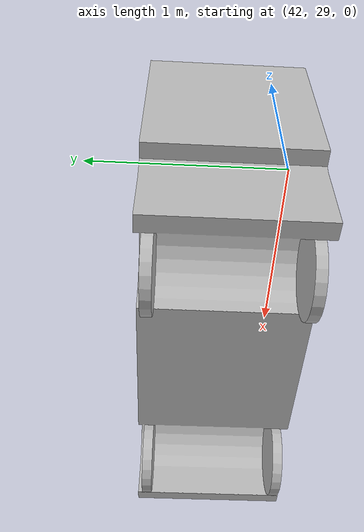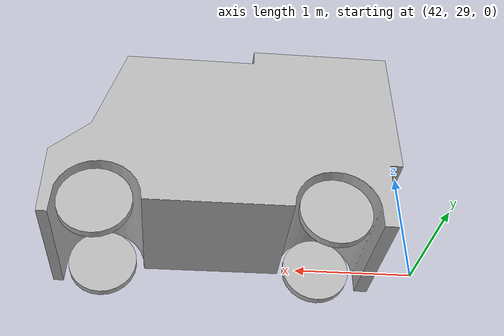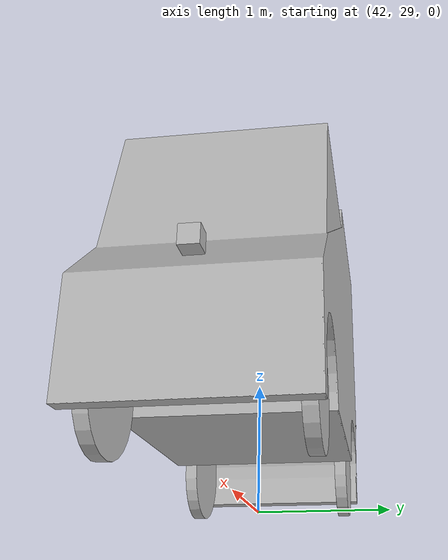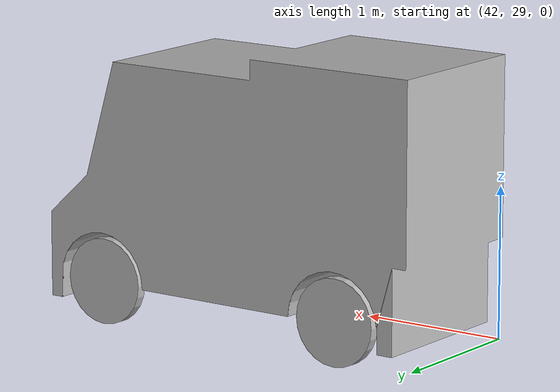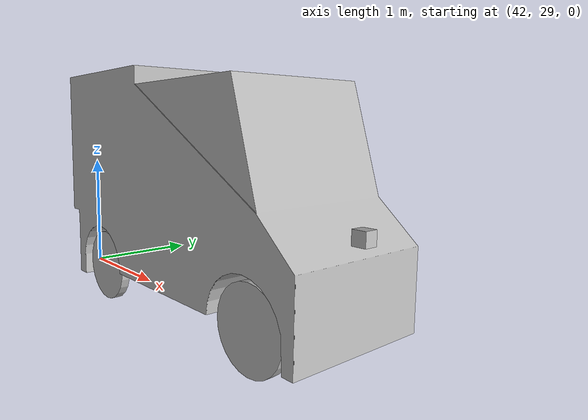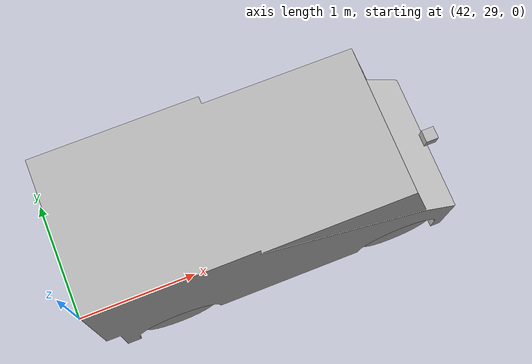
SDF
<?xml version="1.0"?>
<sdf version="1.7">
    <model name="robotaksi_ros2">
      <link name='chassis'>
        <pose>-1.65 0 1.2 0 -0 0</pose>
        <collision name='collision'>
          <geometry>
            <box>
              <size>2.5 1.1 1.2</size>
            </box>
          </geometry>
          <max_contacts>10</max_contacts>
          <surface>
            <contact>
              <ode/>
            </contact>
            <bounce/>
            <friction>
              <torsional>
                <ode/>
              </torsional>
              <ode/>
            </friction>
          </surface>
        </collision>
        <visual name='visual'>
          <pose>1.65 0 -1.2 0 -0 0</pose>
          <geometry>
            <mesh>
              <uri>model://robotaksi/meshes/robotaksi.dae</uri>
              <scale>1 1 1</scale>
            </mesh>
          </geometry>
        </visual>
        <inertial>
          <mass>50</mass>
          <inertia>
            <iyy>11.04</iyy>
            <ixx>32.08</ixx>
            <izz>29.01</izz>
          </inertia>
          <pose>0 0 0 0 -0 1.57</pose>
        </inertial>
        <self_collide>0</self_collide>
        <enable_wind>0</enable_wind>
        <kinematic>0</kinematic>
      </link>
      <link name='fl_wheel'>
        <pose>-0.41 0.48 0.145 1.57 -0 0</pose>
        <visual name='visual'>
          <geometry>
            <cylinder>
              <radius>0.29</radius>
              <length>0.07</length>
            </cylinder>
          </geometry>
        </visual>
        <collision name='collision'>
          <geometry>
            <sphere>
              <radius>0.29</radius>
            </sphere>
          </geometry>
          <max_contacts>10</max_contacts>
          <surface>
            <contact>
              <ode/>
            </contact>
            <bounce/>
            <friction>
              <torsional>
                <ode/>
              </torsional>
              <ode/>
            </friction>
          </surface>
        </collision>
        <inertial>
          <mass>10</mass>
          <inertia>
            <ixx>0.1682</ixx>
            <iyy>0.1682</iyy>
            <izz>0.1682</izz>
            <ixy>0</ixy>
            <ixz>0</ixz>
            <iyz>0</iyz>
          </inertia>
        </inertial>
        <self_collide>0</self_collide>
        <enable_wind>0</enable_wind>
        <kinematic>0</kinematic>
      </link>
      <link name='fr_wheel'>
        <pose>-0.41 -0.48 0.145 1.57 -0 0</pose>
        <visual name='visual'>
          <geometry>
            <cylinder>
              <radius>0.29</radius>
              <length>0.07</length>
            </cylinder>
          </geometry>
        </visual>
        <collision name='collision'>
          <geometry>
            <sphere>
              <radius>0.29</radius>
            </sphere>
          </geometry>
          <max_contacts>10</max_contacts>
          <surface>
            <contact>
              <ode/>
            </contact>
            <bounce/>
            <friction>
              <torsional>
                <ode/>
              </torsional>
              <ode/>
            </friction>
          </surface>
        </collision>
        <inertial>
          <mass>10</mass>
          <inertia>
            <ixx>0.1682</ixx>
            <iyy>0.1682</iyy>
            <izz>0.1682</izz>
            <ixy>0</ixy>
            <ixz>0</ixz>
            <iyz>0</iyz>
          </inertia>
          <pose>0 0 0 0 -0 0</pose>
        </inertial>
        <self_collide>0</self_collide>
        <enable_wind>0</enable_wind>
        <kinematic>0</kinematic>
      </link>
      <joint name='fr_joint' type='universal'>
        <parent>chassis</parent>
        <child>fr_wheel</child>
        <axis>
          <xyz>0 1 0</xyz>
          <limit>
            <lower>-0.785</lower>
            <upper>0.785</upper>
          </limit>
          <dynamics>
            <spring_reference>0</spring_reference>
            <spring_stiffness>0</spring_stiffness>
          </dynamics>
        </axis>
        <axis2>
          <xyz>0 0 -1</xyz>
          <limit>
            <upper>1e+16</upper>
            <lower>-1e+16</lower>
          </limit>
          <dynamics>
            <spring_reference>0</spring_reference>
            <spring_stiffness>0</spring_stiffness>
            <friction>12.031606150200002</friction>
          </dynamics>
        </axis2>
      </joint>
      <joint name='fl_joint' type='universal'>
        <parent>chassis</parent>
        <child>fl_wheel</child>
        <axis>
          <xyz>0 1 0</xyz>
          <limit>
            <lower>-0.785</lower>
            <upper>0.785</upper>
          </limit>
          <dynamics>
            <spring_reference>0</spring_reference>
            <spring_stiffness>0</spring_stiffness>
          </dynamics>
        </axis>
        <axis2>
          <xyz>0 0 -1</xyz>
          <limit>
            <upper>1e+16</upper>
            <lower>-1e+16</lower>
          </limit>
          <dynamics>
            <spring_reference>0</spring_reference>
            <spring_stiffness>0</spring_stiffness>
            <friction>12.031606150200002</friction>
          </dynamics>
        </axis2>
      </joint>
      <link name='rl_wheel'>
        <pose>-2.27 0.48 0.145 1.57 -0 0</pose>
        <visual name='visual'>
          <geometry>
            <cylinder>
              <radius>0.29</radius>
              <length>0.07</length>
            </cylinder>
          </geometry>
        </visual>
        <collision name='collision'>
          <geometry>
            <sphere>
              <radius>0.29</radius>
            </sphere>
          </geometry>
          <max_contacts>10</max_contacts>
          <surface>
            <contact>
              <ode/>
            </contact>
            <bounce/>
            <friction>
              <torsional>
                <ode/>
              </torsional>
              <ode/>
            </friction>
          </surface>
        </collision>
        <inertial>
          <mass>10</mass>
          <inertia>
            <ixx>0.1682</ixx>
            <iyy>0.1682</iyy>
            <izz>0.1682</izz>
            <ixy>0</ixy>
            <ixz>0</ixz>
            <iyz>0</iyz>
          </inertia>
          <pose>0 0 0 0 -0 0</pose>
        </inertial>
        <self_collide>0</self_collide>
        <enable_wind>0</enable_wind>
        <kinematic>0</kinematic>
      </link>
      <link name='rr_wheel'>
        <pose>-2.27 -0.48 0.145 1.57 -0 0</pose>
        <visual name='visual'>
          <geometry>
            <cylinder>
              <radius>0.29</radius>
              <length>0.07</length>
            </cylinder>
          </geometry>
        </visual>
        <collision name='collision'>
          <geometry>
            <sphere>
              <radius>0.29</radius>
            </sphere>
          </geometry>
          <max_contacts>10</max_contacts>
          <surface>
            <contact>
              <ode/>
            </contact>
            <bounce/>
            <friction>
              <torsional>
                <ode/>
              </torsional>
              <ode/>
            </friction>
          </surface>
        </collision>
        <inertial>
          <mass>10</mass>
          <inertia>
            <ixx>0.1682</ixx>
            <iyy>0.1682</iyy>
            <izz>0.1682</izz>
            <ixy>0</ixy>
            <ixz>0</ixz>
            <iyz>0</iyz>
          </inertia>
          <pose>0 0 0 0 -0 0</pose>
        </inertial>
        <self_collide>0</self_collide>
        <enable_wind>0</enable_wind>
        <kinematic>0</kinematic>
      </link>
      <joint name='rr_joint' type='revolute'>
        <parent>chassis</parent>
        <child>rr_wheel</child>
        <axis>
          <xyz>0 0 -1</xyz>
          <limit>
            <lower>-1e+16</lower>
            <upper>1e+16</upper>
          </limit>
          <dynamics>
            <spring_reference>0</spring_reference>
            <spring_stiffness>0</spring_stiffness>
            <friction>12.031606150200002</friction>
          </dynamics>
        </axis>
      </joint>
      <joint name='rl_joint' type='revolute'>
        <parent>chassis</parent>
        <child>rl_wheel</child>
        <axis>
          <xyz>0 0 -1</xyz>
          <limit>
            <lower>-1e+16</lower>
            <upper>1e+16</upper>
          </limit>
          <dynamics>
            <spring_reference>0</spring_reference>
            <spring_stiffness>0</spring_stiffness>
            <friction>12.031606150200002</friction>
          </dynamics>
        </axis>
      </joint>
      <plugin name='ackermann_drive' filename='libgazebo_ros_ackermann_drive.so'>
        <update_rate>100.0</update_rate>
        <front_left_joint>fl_joint</front_left_joint>
        <front_right_joint>fr_joint</front_right_joint>
        <rear_left_joint>rl_joint</rear_left_joint>
        <rear_right_joint>rr_joint</rear_right_joint>
        <left_steering_joint>fl_joint</left_steering_joint>
        <right_steering_joint>fr_joint</right_steering_joint>
        <max_steer>0.6458</max_steer>
        <max_steering_angle>7.85</max_steering_angle>
        <max_speed>20</max_speed>
        <left_steering_pid_gain>1500 0 250</left_steering_pid_gain>
        <left_steering_i_range>0 0</left_steering_i_range>
        <right_steering_pid_gain>1500 0 250</right_steering_pid_gain>
        <right_steering_i_range>0 0</right_steering_i_range>
        <linear_velocity_pid_gain>150 0 1</linear_velocity_pid_gain>
        <linear_velocity_i_range>0 0</linear_velocity_i_range>
        <publish_odom>1</publish_odom>
        <publish_odom_tf>1</publish_odom_tf>
        <publish_wheel_tf>1</publish_wheel_tf>
        <publish_distance>1</publish_distance>
        <odometry_frame>odom</odometry_frame>
        <robot_base_frame>chassis</robot_base_frame>
      </plugin>
      <link name='hokuyo_link'>
        <sensor name='head_hokuyo_sensor' type='ray'>
          <always_on>1</always_on>
          <visualize>0</visualize>
          <pose>0 0 0.7 0 -0 0</pose>
          <update_rate>100</update_rate>
          <ray>
            <scan>
              <horizontal>
                <samples>2000</samples>
                <resolution>0.2</resolution>
                <min_angle>-3.14</min_angle>
                <max_angle>3.14</max_angle>
              </horizontal>
              <vertical>
                <samples>1</samples>
                <min_angle>0</min_angle>
                <max_angle>0</max_angle>
              </vertical>
            </scan>
            <range>
              <min>0.15</min>
              <max>10</max>
              <resolution>0.5</resolution>
            </range>
            <noise>
              <type>gaussian</type>
              <mean>0</mean>
              <stddev>0.01</stddev>
            </noise>
          </ray>
          <plugin name='gazebo_ros_head_hokuyo_controller' filename='libgazebo_ros_ray_sensor.so'>
            <ros>
              <namespace>/lidar</namespace>
              <remapping>~/out:=data</remapping>
            </ros>
            <output_type>sensor_msgs/LaserScan</output_type>
            <frameName>hokuyo_link</frameName>
          </plugin>
        </sensor>
        <self_collide>0</self_collide>
        <enable_wind>0</enable_wind>
        <kinematic>0</kinematic>
      </link>
      <joint name='hokuyo_joint' type='fixed'>
        <parent>chassis</parent>
        <child>hokuyo_link</child>
        <pose>0 0 0 0 -0 0</pose>
      </joint>
      <link name='camera_link'>
        <pose relative_to='hokuyo_link'>0 0 0.7 0 -0 0</pose>
        <visual name='visual'>
          <geometry>
            <box>
              <size>0.1 0.1 0.1</size>
            </box>
          </geometry>
        </visual>
        <sensor name='camera_sensor' type='camera'>
          <always_on>1</always_on>
          <update_rate>100</update_rate>
          <camera name='left'>
            <pose>0 -0.12 0 0 -0 0</pose>
            <horizontal_fov>1.91986</horizontal_fov>
            <image>
              <width>672</width>
              <height>376</height>
              <format>R8G8B8</format>
            </image>
            <clip>
              <near>0.3</near>
              <far>130</far>
            </clip>
            <vertical_fov>1.2217304764</vertical_fov>
          </camera>
          <camera name='right'>
            <pose>0 0.12 0 0 -0 0</pose>
            <horizontal_fov>1.91986</horizontal_fov>
            <image>
              <width>672</width>
              <height>376</height>
              <format>R8G8B8</format>
            </image>
            <clip>
              <near>0.3</near>
              <far>130</far>
            </clip>
            <vertical_fov>1.2217304764</vertical_fov>
          </camera>
          <plugin name='camera_controller' filename='libgazebo_ros_camera.so'>
            <ros>
              <namespace>zed_cam</namespace>
            </ros>
            <frameName>camera_link</frameName>
          </plugin>
        </sensor>
        <enable_wind>0</enable_wind>
        <kinematic>0</kinematic>
      </link>
      <joint name='camera_joint' type='fixed'>
        <parent>chassis</parent>
        <child>camera_link</child>
      </joint>
      <pose>45.0417 29.2195 0 0 -0 0</pose>
    </model>
</sdf>
